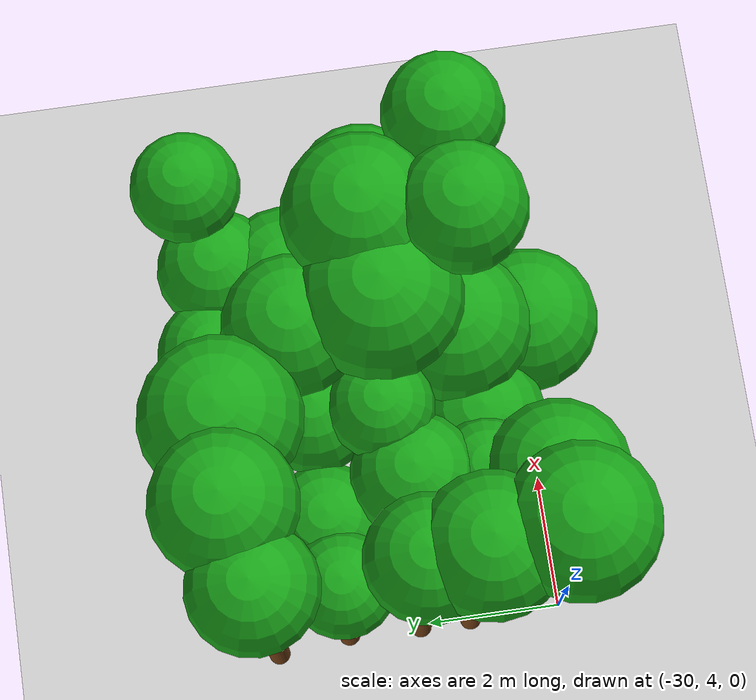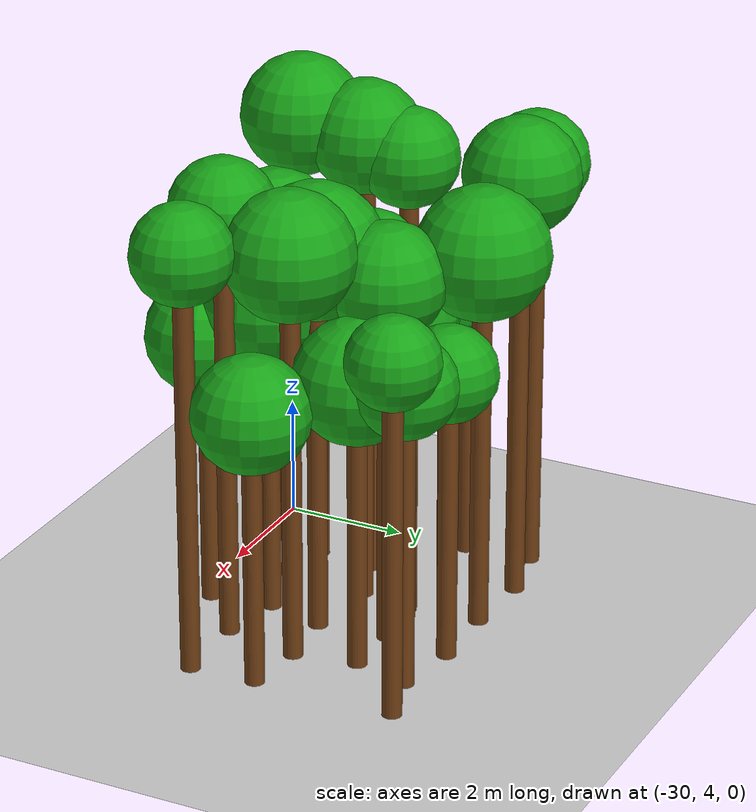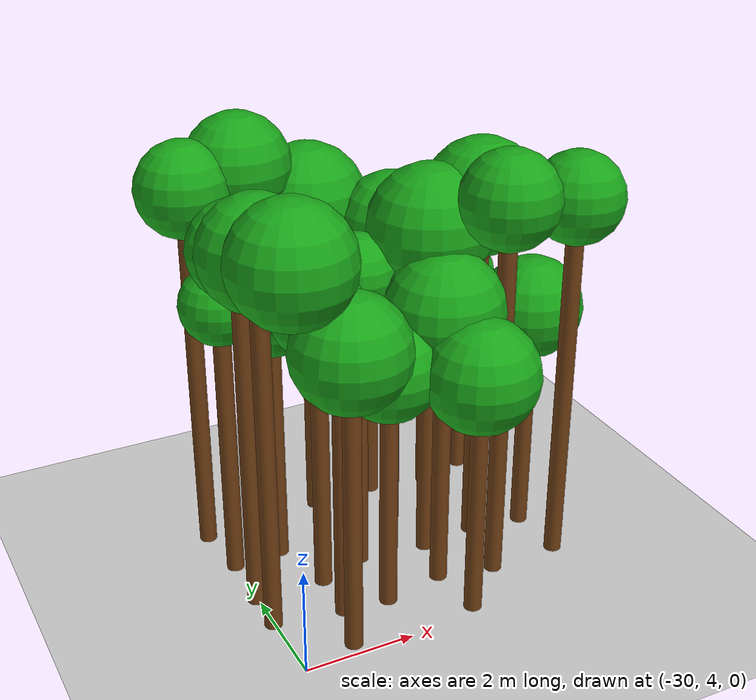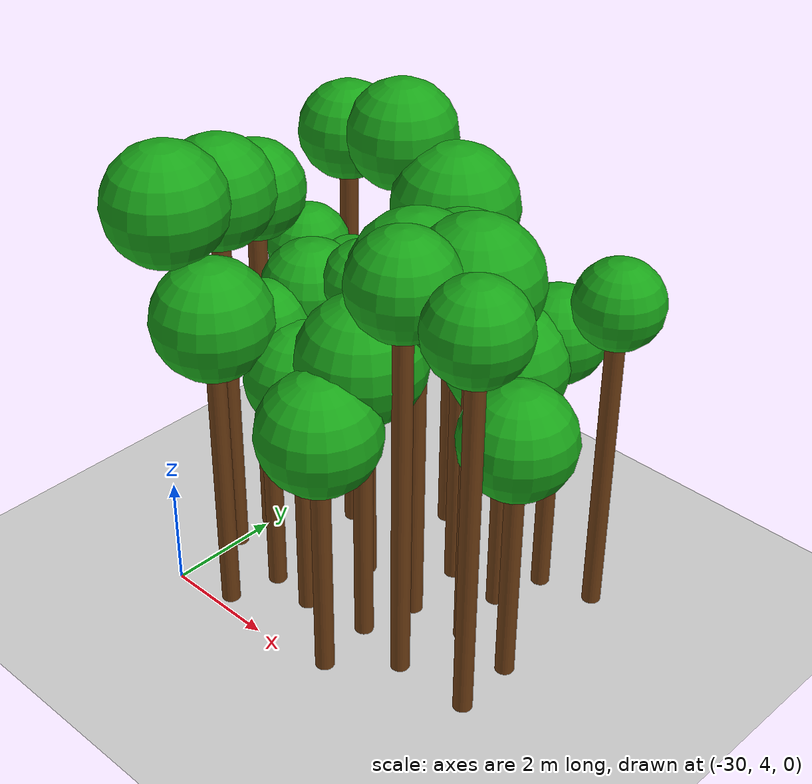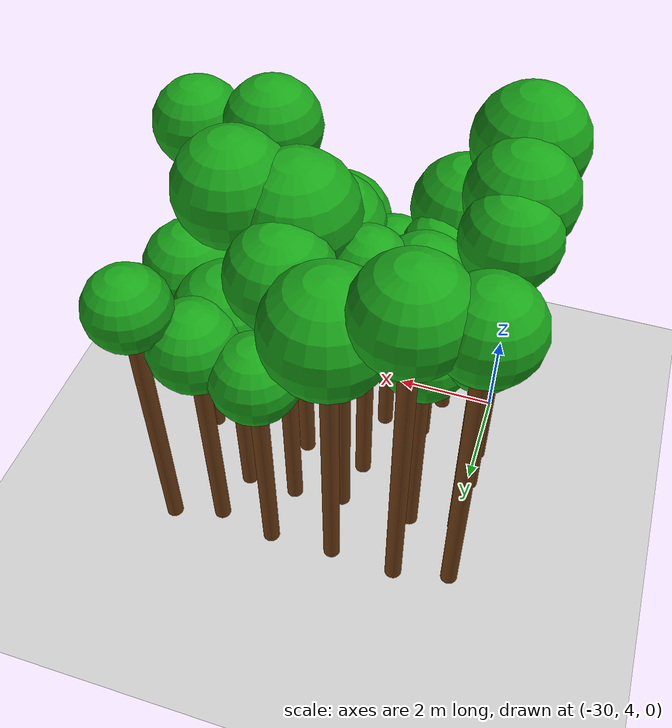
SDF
<sdf version="1.6">
 <world name="forest_world">
  <include><uri>model://sun</uri></include>
  <include><uri>model://ground_plane</uri></include>
  <model name="tree_31_leaf">
   <static>true</static>
   <pose>-29.92 4.26 7.26 0 0 0</pose>
   <link name="link">
    <collision name="collision"><geometry><sphere><radius>1.01</radius></sphere></geometry></collision>
    <visual name="visual">
     <geometry><sphere><radius>1.01</radius></sphere></geometry>
     <material><ambient>0.05 0.45 0.05 1</ambient><diffuse>0.10 0.65 0.10 1</diffuse></material>
    </visual>
   </link>
  </model>
  <model name="tree_32_trunk">
   <static>true</static>
   <pose>-30.02 5.37 3.23 0 0 0</pose>
   <link name="link">
    <collision name="collision">
     <geometry><cylinder><radius>0.16</radius><length>6.46</length></cylinder></geometry>
    </collision>
    <visual name="visual">
     <geometry><cylinder><radius>0.16</radius><length>6.46</length></cylinder></geometry>
     <material><ambient>0.35 0.20 0.05 1</ambient><diffuse>0.45 0.25 0.08 1</diffuse></material>
    </visual>
   </link>
  </model>
  <model name="tree_32_leaf">
   <static>true</static>
   <pose>-30.02 5.37 7.03 0 0 0</pose>
   <link name="link">
    <collision name="collision"><geometry><sphere><radius>0.95</radius></sphere></geometry></collision>
    <visual name="visual">
     <geometry><sphere><radius>0.95</radius></sphere></geometry>
     <material><ambient>0.05 0.45 0.05 1</ambient><diffuse>0.10 0.65 0.10 1</diffuse></material>
    </visual>
   </link>
  </model>
  <model name="tree_33_trunk">
   <static>true</static>
   <pose>-30.03 6.14 3.15 0 0 0</pose>
   <link name="link">
    <collision name="collision">
     <geometry><cylinder><radius>0.16</radius><length>6.29</length></cylinder></geometry>
    </collision>
    <visual name="visual">
     <geometry><cylinder><radius>0.16</radius><length>6.29</length></cylinder></geometry>
     <material><ambient>0.35 0.20 0.05 1</ambient><diffuse>0.45 0.25 0.08 1</diffuse></material>
    </visual>
   </link>
  </model>
  <model name="tree_33_leaf">
   <static>true</static>
   <pose>-30.03 6.14 6.79 0 0 0</pose>
   <link name="link">
    <collision name="collision"><geometry><sphere><radius>0.84</radius></sphere></geometry></collision>
    <visual name="visual">
     <geometry><sphere><radius>0.84</radius></sphere></geometry>
     <material><ambient>0.05 0.45 0.05 1</ambient><diffuse>0.10 0.65 0.10 1</diffuse></material>
    </visual>
   </link>
  </model>
  <model name="tree_34_trunk">
   <static>true</static>
   <pose>-30.00 7.24 2.48 0 0 0</pose>
   <link name="link">
    <collision name="collision">
     <geometry><cylinder><radius>0.16</radius><length>4.95</length></cylinder></geometry>
    </collision>
    <visual name="visual">
     <geometry><cylinder><radius>0.16</radius><length>4.95</length></cylinder></geometry>
     <material><ambient>0.35 0.20 0.05 1</ambient><diffuse>0.45 0.25 0.08 1</diffuse></material>
    </visual>
   </link>
  </model>
  <model name="tree_34_leaf">
   <static>true</static>
   <pose>-30.00 7.24 5.38 0 0 0</pose>
   <link name="link">
    <collision name="collision"><geometry><sphere><radius>0.71</radius></sphere></geometry></collision>
    <visual name="visual">
     <geometry><sphere><radius>0.71</radius></sphere></geometry>
     <material><ambient>0.05 0.45 0.05 1</ambient><diffuse>0.10 0.65 0.10 1</diffuse></material>
    </visual>
   </link>
  </model>
  <model name="tree_35_trunk">
   <static>true</static>
   <pose>-30.13 8.34 3.28 0 0 0</pose>
   <link name="link">
    <collision name="collision">
     <geometry><cylinder><radius>0.16</radius><length>6.56</length></cylinder></geometry>
    </collision>
    <visual name="visual">
     <geometry><cylinder><radius>0.16</radius><length>6.56</length></cylinder></geometry>
     <material><ambient>0.35 0.20 0.05 1</ambient><diffuse>0.45 0.25 0.08 1</diffuse></material>
    </visual>
   </link>
  </model>
  <model name="tree_35_leaf">
   <static>true</static>
   <pose>-30.13 8.34 7.07 0 0 0</pose>
   <link name="link">
    <collision name="collision"><geometry><sphere><radius>0.85</radius></sphere></geometry></collision>
    <visual name="visual">
     <geometry><sphere><radius>0.85</radius></sphere></geometry>
     <material><ambient>0.05 0.45 0.05 1</ambient><diffuse>0.10 0.65 0.10 1</diffuse></material>
    </visual>
   </link>
  </model>
  <model name="tree_86_trunk">
   <static>true</static>
   <pose>-28.99 4.27 2.51 0 0 0</pose>
   <link name="link">
    <collision name="collision">
     <geometry><cylinder><radius>0.16</radius><length>5.03</length></cylinder></geometry>
    </collision>
    <visual name="visual">
     <geometry><cylinder><radius>0.16</radius><length>5.03</length></cylinder></geometry>
     <material><ambient>0.35 0.20 0.05 1</ambient><diffuse>0.45 0.25 0.08 1</diffuse></material>
    </visual>
   </link>
  </model>
  <model name="tree_86_leaf">
   <static>true</static>
   <pose>-28.99 4.27 5.62 0 0 0</pose>
   <link name="link">
    <collision name="collision"><geometry><sphere><radius>0.99</radius></sphere></geometry></collision>
    <visual name="visual">
     <geometry><sphere><radius>0.99</radius></sphere></geometry>
     <material><ambient>0.05 0.45 0.05 1</ambient><diffuse>0.10 0.65 0.10 1</diffuse></material>
    </visual>
   </link>
  </model>
  <model name="tree_87_trunk">
   <static>true</static>
   <pose>-28.76 5.15 2.41 0 0 0</pose>
   <link name="link">
    <collision name="collision">
     <geometry><cylinder><radius>0.16</radius><length>4.81</length></cylinder></geometry>
    </collision>
    <visual name="visual">
     <geometry><cylinder><radius>0.16</radius><length>4.81</length></cylinder></geometry>
     <material><ambient>0.35 0.20 0.05 1</ambient><diffuse>0.45 0.25 0.08 1</diffuse></material>
    </visual>
   </link>
  </model>
  <model name="tree_87_leaf">
   <static>true</static>
   <pose>-28.76 5.15 5.25 0 0 0</pose>
   <link name="link">
    <collision name="collision"><geometry><sphere><radius>0.73</radius></sphere></geometry></collision>
    <visual name="visual">
     <geometry><sphere><radius>0.73</radius></sphere></geometry>
     <material><ambient>0.05 0.45 0.05 1</ambient><diffuse>0.10 0.65 0.10 1</diffuse></material>
    </visual>
   </link>
  </model>
  <model name="tree_88_trunk">
   <static>true</static>
   <pose>-28.72 6.12 2.48 0 0 0</pose>
   <link name="link">
    <collision name="collision">
     <geometry><cylinder><radius>0.16</radius><length>4.97</length></cylinder></geometry>
    </collision>
    <visual name="visual">
     <geometry><cylinder><radius>0.16</radius><length>4.97</length></cylinder></geometry>
     <material><ambient>0.35 0.20 0.05 1</ambient><diffuse>0.45 0.25 0.08 1</diffuse></material>
    </visual>
   </link>
  </model>
  <model name="tree_88_leaf">
   <static>true</static>
   <pose>-28.72 6.12 5.48 0 0 0</pose>
   <link name="link">
    <collision name="collision"><geometry><sphere><radius>0.85</radius></sphere></geometry></collision>
    <visual name="visual">
     <geometry><sphere><radius>0.85</radius></sphere></geometry>
     <material><ambient>0.05 0.45 0.05 1</ambient><diffuse>0.10 0.65 0.10 1</diffuse></material>
    </visual>
   </link>
  </model>
  <model name="tree_89_trunk">
   <static>true</static>
   <pose>-29.07 7.32 2.26 0 0 0</pose>
   <link name="link">
    <collision name="collision">
     <geometry><cylinder><radius>0.16</radius><length>4.53</length></cylinder></geometry>
    </collision>
    <visual name="visual">
     <geometry><cylinder><radius>0.16</radius><length>4.53</length></cylinder></geometry>
     <material><ambient>0.35 0.20 0.05 1</ambient><diffuse>0.45 0.25 0.08 1</diffuse></material>
    </visual>
   </link>
  </model>
  <model name="tree_89_leaf">
   <static>true</static>
   <pose>-29.07 7.32 4.99 0 0 0</pose>
   <link name="link">
    <collision name="collision"><geometry><sphere><radius>0.78</radius></sphere></geometry></collision>
    <visual name="visual">
     <geometry><sphere><radius>0.78</radius></sphere></geometry>
     <material><ambient>0.05 0.45 0.05 1</ambient><diffuse>0.10 0.65 0.10 1</diffuse></material>
    </visual>
   </link>
  </model>
  <model name="tree_90_trunk">
   <static>true</static>
   <pose>-29.08 8.55 3.34 0 0 0</pose>
   <link name="link">
    <collision name="collision">
     <geometry><cylinder><radius>0.16</radius><length>6.69</length></cylinder></geometry>
    </collision>
    <visual name="visual">
     <geometry><cylinder><radius>0.16</radius><length>6.69</length></cylinder></geometry>
     <material><ambient>0.35 0.20 0.05 1</ambient><diffuse>0.45 0.25 0.08 1</diffuse></material>
    </visual>
   </link>
  </model>
  <model name="tree_90_leaf">
   <static>true</static>
   <pose>-29.08 8.55 7.25 0 0 0</pose>
   <link name="link">
    <collision name="collision"><geometry><sphere><radius>0.95</radius></sphere></geometry></collision>
    <visual name="visual">
     <geometry><sphere><radius>0.95</radius></sphere></geometry>
     <material><ambient>0.05 0.45 0.05 1</ambient><diffuse>0.10 0.65 0.10 1</diffuse></material>
    </visual>
   </link>
  </model>
  <model name="tree_142_trunk">
   <static>true</static>
   <pose>-27.92 5.08 2.08 0 0 0</pose>
   <link name="link">
    <collision name="collision">
     <geometry><cylinder><radius>0.16</radius><length>4.15</length></cylinder></geometry>
    </collision>
    <visual name="visual">
     <geometry><cylinder><radius>0.16</radius><length>4.15</length></cylinder></geometry>
     <material><ambient>0.35 0.20 0.05 1</ambient><diffuse>0.45 0.25 0.08 1</diffuse></material>
    </visual>
   </link>
  </model>
  <model name="tree_142_leaf">
   <static>true</static>
   <pose>-27.92 5.08 4.69 0 0 0</pose>
   <link name="link">
    <collision name="collision"><geometry><sphere><radius>0.90</radius></sphere></geometry></collision>
    <visual name="visual">
     <geometry><sphere><radius>0.90</radius></sphere></geometry>
     <material><ambient>0.05 0.45 0.05 1</ambient><diffuse>0.10 0.65 0.10 1</diffuse></material>
    </visual>
   </link>
  </model>
  <model name="tree_143_trunk">
   <static>true</static>
   <pose>-27.83 6.43 2.71 0 0 0</pose>
   <link name="link">
    <collision name="collision">
     <geometry><cylinder><radius>0.16</radius><length>5.41</length></cylinder></geometry>
    </collision>
    <visual name="visual">
     <geometry><cylinder><radius>0.16</radius><length>5.41</length></cylinder></geometry>
     <material><ambient>0.35 0.20 0.05 1</ambient><diffuse>0.45 0.25 0.08 1</diffuse></material>
    </visual>
   </link>
  </model>
  <model name="tree_143_leaf">
   <static>true</static>
   <pose>-27.83 6.43 5.84 0 0 0</pose>
   <link name="link">
    <collision name="collision"><geometry><sphere><radius>0.71</radius></sphere></geometry></collision>
    <visual name="visual">
     <geometry><sphere><radius>0.71</radius></sphere></geometry>
     <material><ambient>0.05 0.45 0.05 1</ambient><diffuse>0.10 0.65 0.10 1</diffuse></material>
    </visual>
   </link>
  </model>
  <model name="tree_144_trunk">
   <static>true</static>
   <pose>-27.65 7.30 2.39 0 0 0</pose>
   <link name="link">
    <collision name="collision">
     <geometry><cylinder><radius>0.16</radius><length>4.78</length></cylinder></geometry>
    </collision>
    <visual name="visual">
     <geometry><cylinder><radius>0.16</radius><length>4.78</length></cylinder></geometry>
     <material><ambient>0.35 0.20 0.05 1</ambient><diffuse>0.45 0.25 0.08 1</diffuse></material>
    </visual>
   </link>
  </model>
  <model name="tree_144_leaf">
   <static>true</static>
   <pose>-27.65 7.30 5.28 0 0 0</pose>
   <link name="link">
    <collision name="collision"><geometry><sphere><radius>0.83</radius></sphere></geometry></collision>
    <visual name="visual">
     <geometry><sphere><radius>0.83</radius></sphere></geometry>
     <material><ambient>0.05 0.45 0.05 1</ambient><diffuse>0.10 0.65 0.10 1</diffuse></material>
    </visual>
   </link>
  </model>
  <model name="tree_145_trunk">
   <static>true</static>
   <pose>-27.82 8.49 2.88 0 0 0</pose>
   <link name="link">
    <collision name="collision">
     <geometry><cylinder><radius>0.16</radius><length>5.76</length></cylinder></geometry>
    </collision>
    <visual name="visual">
     <geometry><cylinder><radius>0.16</radius><length>5.76</length></cylinder></geometry>
     <material><ambient>0.35 0.20 0.05 1</ambient><diffuse>0.45 0.25 0.08 1</diffuse></material>
    </visual>
   </link>
  </model>
  <model name="tree_145_leaf">
   <static>true</static>
   <pose>-27.82 8.49 6.41 0 0 0</pose>
   <link name="link">
    <collision name="collision"><geometry><sphere><radius>1.08</radius></sphere></geometry></collision>
    <visual name="visual">
     <geometry><sphere><radius>1.08</radius></sphere></geometry>
     <material><ambient>0.05 0.45 0.05 1</ambient><diffuse>0.10 0.65 0.10 1</diffuse></material>
    </visual>
   </link>
  </model>
  <model name="tree_196_trunk">
   <static>true</static>
   <pose>-26.65 4.26 2.03 0 0 0</pose>
   <link name="link">
    <collision name="collision">
     <geometry><cylinder><radius>0.16</radius><length>4.07</length></cylinder></geometry>
    </collision>
    <visual name="visual">
     <geometry><cylinder><radius>0.16</radius><length>4.07</length></cylinder></geometry>
     <material><ambient>0.35 0.20 0.05 1</ambient><diffuse>0.45 0.25 0.08 1</diffuse></material>
    </visual>
   </link>
  </model>
  <model name="tree_196_leaf">
   <static>true</static>
   <pose>-26.65 4.26 4.66 0 0 0</pose>
   <link name="link">
    <collision name="collision"><geometry><sphere><radius>0.99</radius></sphere></geometry></collision>
    <visual name="visual">
     <geometry><sphere><radius>0.99</radius></sphere></geometry>
     <material><ambient>0.05 0.45 0.05 1</ambient><diffuse>0.10 0.65 0.10 1</diffuse></material>
    </visual>
   </link>
  </model>
  <model name="tree_197_trunk">
   <static>true</static>
   <pose>-26.78 5.30 2.40 0 0 0</pose>
   <link name="link">
    <collision name="collision">
     <geometry><cylinder><radius>0.16</radius><length>4.79</length></cylinder></geometry>
    </collision>
    <visual name="visual">
     <geometry><cylinder><radius>0.16</radius><length>4.79</length></cylinder></geometry>
     <material><ambient>0.35 0.20 0.05 1</ambient><diffuse>0.45 0.25 0.08 1</diffuse></material>
    </visual>
   </link>
  </model>
  <model name="tree_197_leaf">
   <static>true</static>
   <pose>-26.78 5.30 5.42 0 0 0</pose>
   <link name="link">
    <collision name="collision"><geometry><sphere><radius>1.04</radius></sphere></geometry></collision>
    <visual name="visual">
     <geometry><sphere><radius>1.04</radius></sphere></geometry>
     <material><ambient>0.05 0.45 0.05 1</ambient><diffuse>0.10 0.65 0.10 1</diffuse></material>
    </visual>
   </link>
  </model>
  <model name="tree_198_trunk">
   <static>true</static>
   <pose>-26.55 6.26 2.93 0 0 0</pose>
   <link name="link">
    <collision name="collision">
     <geometry><cylinder><radius>0.16</radius><length>5.86</length></cylinder></geometry>
    </collision>
    <visual name="visual">
     <geometry><cylinder><radius>0.16</radius><length>5.86</length></cylinder></geometry>
     <material><ambient>0.35 0.20 0.05 1</ambient><diffuse>0.45 0.25 0.08 1</diffuse></material>
    </visual>
   </link>
  </model>
  <model name="tree_198_leaf">
   <static>true</static>
   <pose>-26.55 6.26 6.51 0 0 0</pose>
   <link name="link">
    <collision name="collision"><geometry><sphere><radius>1.10</radius></sphere></geometry></collision>
    <visual name="visual">
     <geometry><sphere><radius>1.10</radius></sphere></geometry>
     <material><ambient>0.05 0.45 0.05 1</ambient><diffuse>0.10 0.65 0.10 1</diffuse></material>
    </visual>
   </link>
  </model>
  <model name="tree_199_trunk">
   <static>true</static>
   <pose>-26.68 7.42 2.81 0 0 0</pose>
   <link name="link">
    <collision name="collision">
     <geometry><cylinder><radius>0.16</radius><length>5.62</length></cylinder></geometry>
    </collision>
    <visual name="visual">
     <geometry><cylinder><radius>0.16</radius><length>5.62</length></cylinder></geometry>
     <material><ambient>0.35 0.20 0.05 1</ambient><diffuse>0.45 0.25 0.08 1</diffuse></material>
    </visual>
   </link>
  </model>
  <model name="tree_199_leaf">
   <static>true</static>
   <pose>-26.68 7.42 6.18 0 0 0</pose>
   <link name="link">
    <collision name="collision"><geometry><sphere><radius>0.94</radius></sphere></geometry></collision>
    <visual name="visual">
     <geometry><sphere><radius>0.94</radius></sphere></geometry>
     <material><ambient>0.05 0.45 0.05 1</ambient><diffuse>0.10 0.65 0.10 1</diffuse></material>
    </visual>
   </link>
  </model>
  <model name="tree_200_trunk">
   <static>true</static>
   <pose>-26.58 8.52 2.21 0 0 0</pose>
   <link name="link">
    <collision name="collision">
     <geometry><cylinder><radius>0.16</radius><length>4.42</length></cylinder></geometry>
    </collision>
    <visual name="visual">
     <geometry><cylinder><radius>0.16</radius><length>4.42</length></cylinder></geometry>
     <material><ambient>0.35 0.20 0.05 1</ambient><diffuse>0.45 0.25 0.08 1</diffuse></material>
    </visual>
   </link>
  </model>
  <model name="tree_200_leaf">
   <static>true</static>
   <pose>-26.58 8.52 4.89 0 0 0</pose>
   <link name="link">
    <collision name="collision"><geometry><sphere><radius>0.78</radius></sphere></geometry></collision>
    <visual name="visual">
     <geometry><sphere><radius>0.78</radius></sphere></geometry>
     <material><ambient>0.05 0.45 0.05 1</ambient><diffuse>0.10 0.65 0.10 1</diffuse></material>
    </visual>
   </link>
  </model>
  <model name="tree_252_trunk">
   <static>true</static>
   <pose>-25.74 5.09 3.36 0 0 0</pose>
   <link name="link">
    <collision name="collision">
     <geometry><cylinder><radius>0.16</radius><length>6.72</length></cylinder></geometry>
    </collision>
    <visual name="visual">
     <geometry><cylinder><radius>0.16</radius><length>6.72</length></cylinder></geometry>
     <material><ambient>0.35 0.20 0.05 1</ambient><diffuse>0.45 0.25 0.08 1</diffuse></material>
    </visual>
   </link>
  </model>
  <model name="tree_252_leaf">
   <static>true</static>
   <pose>-25.74 5.09 7.24 0 0 0</pose>
   <link name="link">
    <collision name="collision"><geometry><sphere><radius>0.86</radius></sphere></geometry></collision>
    <visual name="visual">
     <geometry><sphere><radius>0.86</radius></sphere></geometry>
     <material><ambient>0.05 0.45 0.05 1</ambient><diffuse>0.10 0.65 0.10 1</diffuse></material>
    </visual>
   </link>
  </model>
  <model name="tree_253_trunk">
   <static>true</static>
   <pose>-25.50 6.36 3.11 0 0 0</pose>
   <link name="link">
    <collision name="collision">
     <geometry><cylinder><radius>0.16</radius><length>6.22</length></cylinder></geometry>
    </collision>
    <visual name="visual">
     <geometry><cylinder><radius>0.16</radius><length>6.22</length></cylinder></geometry>
     <material><ambient>0.35 0.20 0.05 1</ambient><diffuse>0.45 0.25 0.08 1</diffuse></material>
    </visual>
   </link>
  </model>
  <model name="tree_253_leaf">
   <static>true</static>
   <pose>-25.50 6.36 6.84 0 0 0</pose>
   <link name="link">
    <collision name="collision"><geometry><sphere><radius>1.04</radius></sphere></geometry></collision>
    <visual name="visual">
     <geometry><sphere><radius>1.04</radius></sphere></geometry>
     <material><ambient>0.05 0.45 0.05 1</ambient><diffuse>0.10 0.65 0.10 1</diffuse></material>
    </visual>
   </link>
  </model>
  <model name="tree_254_trunk">
   <static>true</static>
   <pose>-25.69 7.40 2.15 0 0 0</pose>
   <link name="link">
    <collision name="collision">
     <geometry><cylinder><radius>0.16</radius><length>4.29</length></cylinder></geometry>
    </collision>
    <visual name="visual">
     <geometry><cylinder><radius>0.16</radius><length>4.29</length></cylinder></geometry>
     <material><ambient>0.35 0.20 0.05 1</ambient><diffuse>0.45 0.25 0.08 1</diffuse></material>
    </visual>
   </link>
  </model>
  <model name="tree_254_leaf">
   <static>true</static>
   <pose>-25.69 7.40 4.90 0 0 0</pose>
   <link name="link">
    <collision name="collision"><geometry><sphere><radius>1.01</radius></sphere></geometry></collision>
    <visual name="visual">
     <geometry><sphere><radius>1.01</radius></sphere></geometry>
     <material><ambient>0.05 0.45 0.05 1</ambient><diffuse>0.10 0.65 0.10 1</diffuse></material>
    </visual>
   </link>
  </model>
  <model name="tree_255_trunk">
   <static>true</static>
   <pose>-25.46 8.33 2.30 0 0 0</pose>
   <link name="link">
    <collision name="collision">
     <geometry><cylinder><radius>0.16</radius><length>4.60</length></cylinder></geometry>
    </collision>
    <visual name="visual">
     <geometry><cylinder><radius>0.16</radius><length>4.60</length></cylinder></geometry>
     <material><ambient>0.35 0.20 0.05 1</ambient><diffuse>0.45 0.25 0.08 1</diffuse></material>
    </visual>
   </link>
  </model>
  <model name="tree_255_leaf">
   <static>true</static>
   <pose>-25.46 8.33 5.09 0 0 0</pose>
   <link name="link">
    <collision name="collision"><geometry><sphere><radius>0.82</radius></sphere></geometry></collision>
    <visual name="visual">
     <geometry><sphere><radius>0.82</radius></sphere></geometry>
     <material><ambient>0.05 0.45 0.05 1</ambient><diffuse>0.10 0.65 0.10 1</diffuse></material>
    </visual>
   </link>
  </model>
  <model name="tree_307_trunk">
   <static>true</static>
   <pose>-24.40 5.13 3.28 0 0 0</pose>
   <link name="link">
    <collision name="collision">
     <geometry><cylinder><radius>0.16</radius><length>6.55</length></cylinder></geometry>
    </collision>
    <visual name="visual">
     <geometry><cylinder><radius>0.16</radius><length>6.55</length></cylinder></geometry>
     <material><ambient>0.35 0.20 0.05 1</ambient><diffuse>0.45 0.25 0.08 1</diffuse></material>
    </visual>
   </link>
  </model>
  <model name="tree_307_leaf">
   <static>true</static>
   <pose>-24.40 5.13 7.04 0 0 0</pose>
   <link name="link">
    <collision name="collision"><geometry><sphere><radius>0.81</radius></sphere></geometry></collision>
    <visual name="visual">
     <geometry><sphere><radius>0.81</radius></sphere></geometry>
     <material><ambient>0.05 0.45 0.05 1</ambient><diffuse>0.10 0.65 0.10 1</diffuse></material>
    </visual>
   </link>
  </model>
  <model name="tree_308_trunk">
   <static>true</static>
   <pose>-24.47 6.23 2.03 0 0 0</pose>
   <link name="link">
    <collision name="collision">
     <geometry><cylinder><radius>0.16</radius><length>4.05</length></cylinder></geometry>
    </collision>
    <visual name="visual">
     <geometry><cylinder><radius>0.16</radius><length>4.05</length></cylinder></geometry>
     <material><ambient>0.35 0.20 0.05 1</ambient><diffuse>0.45 0.25 0.08 1</diffuse></material>
    </visual>
   </link>
  </model>
  <model name="tree_308_leaf">
   <static>true</static>
   <pose>-24.47 6.23 4.61 0 0 0</pose>
   <link name="link">
    <collision name="collision"><geometry><sphere><radius>0.94</radius></sphere></geometry></collision>
    <visual name="visual">
     <geometry><sphere><radius>0.94</radius></sphere></geometry>
     <material><ambient>0.05 0.45 0.05 1</ambient><diffuse>0.10 0.65 0.10 1</diffuse></material>
    </visual>
   </link>
  </model>
  <model name="tree_310_trunk">
   <static>true</static>
   <pose>-24.53 8.58 2.74 0 0 0</pose>
   <link name="link">
    <collision name="collision">
     <geometry><cylinder><radius>0.16</radius><length>5.48</length></cylinder></geometry>
    </collision>
    <visual name="visual">
     <geometry><cylinder><radius>0.16</radius><length>5.48</length></cylinder></geometry>
     <material><ambient>0.35 0.20 0.05 1</ambient><diffuse>0.45 0.25 0.08 1</diffuse></material>
    </visual>
   </link>
  </model>
  <model name="tree_310_leaf">
   <static>true</static>
   <pose>-24.53 8.58 5.92 0 0 0</pose>
   <link name="link">
    <collision name="collision"><geometry><sphere><radius>0.74</radius></sphere></geometry></collision>
    <visual name="visual">
     <geometry><sphere><radius>0.74</radius></sphere></geometry>
     <material><ambient>0.05 0.45 0.05 1</ambient><diffuse>0.10 0.65 0.10 1</diffuse></material>
    </visual>
   </link>
  </model>
 </world>
</sdf>
